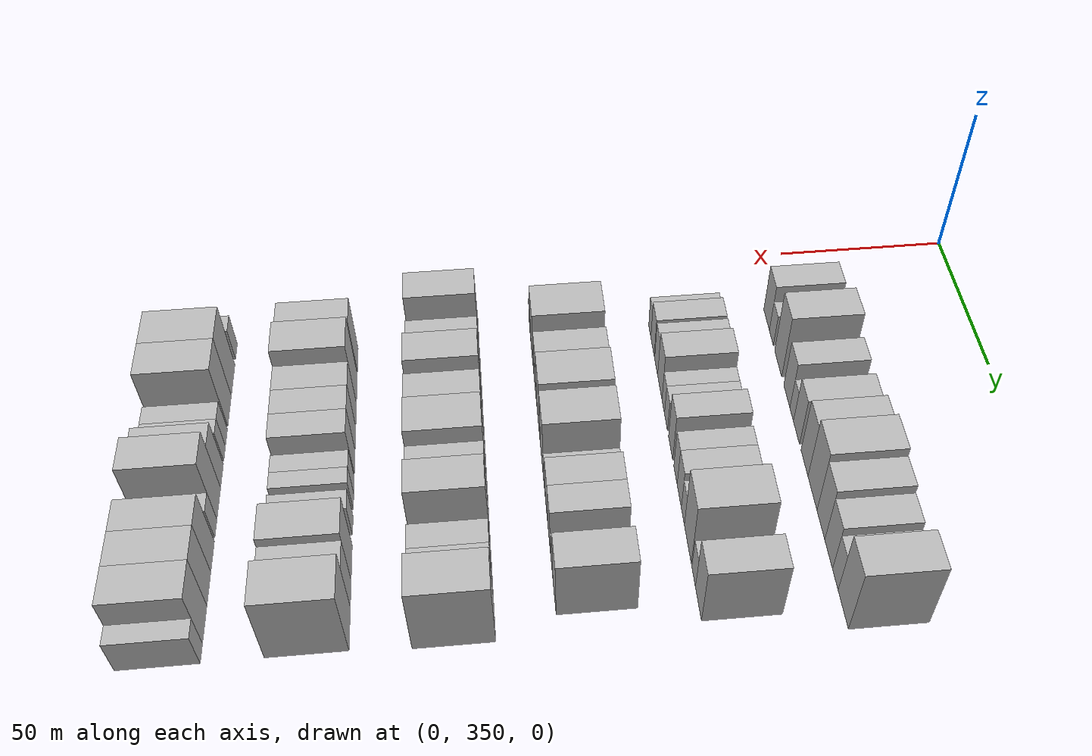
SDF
<sdf version="1.6">
 <world name="default">
  <model name="building_104">
   <static>1</static>
   <pose>50.0000 377.0486 0 0.000000 0.000000 0.000000</pose>
   <link name="link">
    <pose>0 0 9.00 0 0 0</pose>
    <collision name="collision"><geometry><box><size>20.0000 8.4923 18.0000</size></box></geometry></collision>
    <visual name="visual">
     <cast_shadows>0</cast_shadows>
     <geometry><box><size>20.0000 8.4923 18.0000</size></box></geometry>
     <material>
      <script>
       <uri>model://HANNAS_wall/materials/scripts</uri>
       <uri>model://HANNAS_wall/materials/textures</uri>
       <name>vrc/HANNAS_wall</name>
      </script>
     </material>
    </visual>
   </link>
  </model>
  <model name="building_105">
   <static>1</static>
   <pose>50.0000 384.2497 0 0.000000 0.000000 0.000000</pose>
   <link name="link">
    <pose>0 0 6.00 0 0 0</pose>
    <collision name="collision"><geometry><box><size>20.0000 5.9098 12.0000</size></box></geometry></collision>
    <visual name="visual">
     <cast_shadows>0</cast_shadows>
     <geometry><box><size>20.0000 5.9098 12.0000</size></box></geometry>
     <material>
      <script>
       <uri>model://HANNAS_wall/materials/scripts</uri>
       <uri>model://HANNAS_wall/materials/textures</uri>
       <name>vrc/HANNAS_wall</name>
      </script>
     </material>
    </visual>
   </link>
  </model>
  <model name="building_106">
   <static>1</static>
   <pose>50.0000 394.2518 0 0.000000 0.000000 0.000000</pose>
   <link name="link">
    <pose>0 0 12.00 0 0 0</pose>
    <collision name="collision"><geometry><box><size>20.0000 10.0945 24.0000</size></box></geometry></collision>
    <visual name="visual">
     <cast_shadows>0</cast_shadows>
     <geometry><box><size>20.0000 10.0945 24.0000</size></box></geometry>
     <material>
      <script>
       <uri>model://HANNAS_wall/materials/scripts</uri>
       <uri>model://HANNAS_wall/materials/textures</uri>
       <name>vrc/HANNAS_wall</name>
      </script>
     </material>
    </visual>
   </link>
  </model>
  <model name="building_107">
   <static>1</static>
   <pose>50.0000 406.4333 0 0.000000 0.000000 0.000000</pose>
   <link name="link">
    <pose>0 0 9.00 0 0 0</pose>
    <collision name="collision"><geometry><box><size>20.0000 8.2685 18.0000</size></box></geometry></collision>
    <visual name="visual">
     <cast_shadows>0</cast_shadows>
     <geometry><box><size>20.0000 8.2685 18.0000</size></box></geometry>
     <material>
      <script>
       <uri>model://HANNAS_wall/materials/scripts</uri>
       <uri>model://HANNAS_wall/materials/textures</uri>
       <name>vrc/HANNAS_wall</name>
      </script>
     </material>
    </visual>
   </link>
  </model>
  <model name="building_108">
   <static>1</static>
   <pose>50.0000 412.9755 0 0.000000 0.000000 0.000000</pose>
   <link name="link">
    <pose>0 0 6.00 0 0 0</pose>
    <collision name="collision"><geometry><box><size>20.0000 4.8158 12.0000</size></box></geometry></collision>
    <visual name="visual">
     <cast_shadows>0</cast_shadows>
     <geometry><box><size>20.0000 4.8158 12.0000</size></box></geometry>
     <material>
      <script>
       <uri>model://HANNAS_wall/materials/scripts</uri>
       <uri>model://HANNAS_wall/materials/textures</uri>
       <name>vrc/HANNAS_wall</name>
      </script>
     </material>
    </visual>
   </link>
  </model>
  <model name="building_109">
   <static>1</static>
   <pose>50.0000 419.3809 0 0.000000 0.000000 0.000000</pose>
   <link name="link">
    <pose>0 0 9.00 0 0 0</pose>
    <collision name="collision"><geometry><box><size>20.0000 7.9951 18.0000</size></box></geometry></collision>
    <visual name="visual">
     <cast_shadows>0</cast_shadows>
     <geometry><box><size>20.0000 7.9951 18.0000</size></box></geometry>
     <material>
      <script>
       <uri>model://HANNAS_wall/materials/scripts</uri>
       <uri>model://HANNAS_wall/materials/textures</uri>
       <name>vrc/HANNAS_wall</name>
      </script>
     </material>
    </visual>
   </link>
  </model>
  <model name="building_110">
   <static>1</static>
   <pose>50.0000 429.7540 0 0.000000 0.000000 0.000000</pose>
   <link name="link">
    <pose>0 0 10.50 0 0 0</pose>
    <collision name="collision"><geometry><box><size>20.0000 8.7510 21.0000</size></box></geometry></collision>
    <visual name="visual">
     <cast_shadows>0</cast_shadows>
     <geometry><box><size>20.0000 8.7510 21.0000</size></box></geometry>
     <material>
      <script>
       <uri>model://HANNAS_wall/materials/scripts</uri>
       <uri>model://HANNAS_wall/materials/textures</uri>
       <name>vrc/HANNAS_wall</name>
      </script>
     </material>
    </visual>
   </link>
  </model>
  <model name="building_111">
   <static>1</static>
   <pose>50.0000 439.6081 0 0.000000 0.000000 0.000000</pose>
   <link name="link">
    <pose>0 0 12.00 0 0 0</pose>
    <collision name="collision"><geometry><box><size>20.0000 10.9572 24.0000</size></box></geometry></collision>
    <visual name="visual">
     <cast_shadows>0</cast_shadows>
     <geometry><box><size>20.0000 10.9572 24.0000</size></box></geometry>
     <material>
      <script>
       <uri>model://HANNAS_wall/materials/scripts</uri>
       <uri>model://HANNAS_wall/materials/textures</uri>
       <name>vrc/HANNAS_wall</name>
      </script>
     </material>
    </visual>
   </link>
  </model>
  <model name="building_112">
   <static>1</static>
   <pose>50.0000 449.6203 0 0.000000 0.000000 0.000000</pose>
   <link name="link">
    <pose>0 0 10.50 0 0 0</pose>
    <collision name="collision"><geometry><box><size>20.0000 9.0672 21.0000</size></box></geometry></collision>
    <visual name="visual">
     <cast_shadows>0</cast_shadows>
     <geometry><box><size>20.0000 9.0672 21.0000</size></box></geometry>
     <material>
      <script>
       <uri>model://HANNAS_wall/materials/scripts</uri>
       <uri>model://HANNAS_wall/materials/textures</uri>
       <name>vrc/HANNAS_wall</name>
      </script>
     </material>
    </visual>
   </link>
  </model>
  <model name="building_113">
   <static>1</static>
   <pose>50.0000 458.5088 0 0.000000 0.000000 0.000000</pose>
   <link name="link">
    <pose>0 0 9.00 0 0 0</pose>
    <collision name="collision"><geometry><box><size>20.0000 8.7098 18.0000</size></box></geometry></collision>
    <visual name="visual">
     <cast_shadows>0</cast_shadows>
     <geometry><box><size>20.0000 8.7098 18.0000</size></box></geometry>
     <material>
      <script>
       <uri>model://HANNAS_wall/materials/scripts</uri>
       <uri>model://HANNAS_wall/materials/textures</uri>
       <name>vrc/HANNAS_wall</name>
      </script>
     </material>
    </visual>
   </link>
  </model>
  <model name="building_114">
   <static>1</static>
   <pose>50.0000 465.8792 0 0.000000 0.000000 0.000000</pose>
   <link name="link">
    <pose>0 0 7.50 0 0 0</pose>
    <collision name="collision"><geometry><box><size>20.0000 6.0311 15.0000</size></box></geometry></collision>
    <visual name="visual">
     <cast_shadows>0</cast_shadows>
     <geometry><box><size>20.0000 6.0311 15.0000</size></box></geometry>
     <material>
      <script>
       <uri>model://HANNAS_wall/materials/scripts</uri>
       <uri>model://HANNAS_wall/materials/textures</uri>
       <name>vrc/HANNAS_wall</name>
      </script>
     </material>
    </visual>
   </link>
  </model>
  <model name="building_115">
   <static>1</static>
   <pose>50.0000 474.3289 0 0.000000 0.000000 0.000000</pose>
   <link name="link">
    <pose>0 0 12.00 0 0 0</pose>
    <collision name="collision"><geometry><box><size>20.0000 10.8681 24.0000</size></box></geometry></collision>
    <visual name="visual">
     <cast_shadows>0</cast_shadows>
     <geometry><box><size>20.0000 10.8681 24.0000</size></box></geometry>
     <material>
      <script>
       <uri>model://HANNAS_wall/materials/scripts</uri>
       <uri>model://HANNAS_wall/materials/textures</uri>
       <name>vrc/HANNAS_wall</name>
      </script>
     </material>
    </visual>
   </link>
  </model>
  <model name="building_235">
   <static>1</static>
   <pose>85.0000 378.5329 0 0.000000 0.000000 0.000000</pose>
   <link name="link">
    <pose>0 0 6.00 0 0 0</pose>
    <collision name="collision"><geometry><box><size>20.0000 4.8106 12.0000</size></box></geometry></collision>
    <visual name="visual">
     <cast_shadows>0</cast_shadows>
     <geometry><box><size>20.0000 4.8106 12.0000</size></box></geometry>
     <material>
      <script>
       <uri>model://HANNAS_wall/materials/scripts</uri>
       <uri>model://HANNAS_wall/materials/textures</uri>
       <name>vrc/HANNAS_wall</name>
      </script>
     </material>
    </visual>
   </link>
  </model>
  <model name="building_236">
   <static>1</static>
   <pose>85.0000 384.5483 0 0.000000 0.000000 0.000000</pose>
   <link name="link">
    <pose>0 0 7.50 0 0 0</pose>
    <collision name="collision"><geometry><box><size>20.0000 7.2202 15.0000</size></box></geometry></collision>
    <visual name="visual">
     <cast_shadows>0</cast_shadows>
     <geometry><box><size>20.0000 7.2202 15.0000</size></box></geometry>
     <material>
      <script>
       <uri>model://HANNAS_wall/materials/scripts</uri>
       <uri>model://HANNAS_wall/materials/textures</uri>
       <name>vrc/HANNAS_wall</name>
      </script>
     </material>
    </visual>
   </link>
  </model>
  <model name="building_237">
   <static>1</static>
   <pose>85.0000 392.3690 0 0.000000 0.000000 0.000000</pose>
   <link name="link">
    <pose>0 0 7.50 0 0 0</pose>
    <collision name="collision"><geometry><box><size>20.0000 6.4212 15.0000</size></box></geometry></collision>
    <visual name="visual">
     <cast_shadows>0</cast_shadows>
     <geometry><box><size>20.0000 6.4212 15.0000</size></box></geometry>
     <material>
      <script>
       <uri>model://HANNAS_wall/materials/scripts</uri>
       <uri>model://HANNAS_wall/materials/textures</uri>
       <name>vrc/HANNAS_wall</name>
      </script>
     </material>
    </visual>
   </link>
  </model>
  <model name="building_238">
   <static>1</static>
   <pose>85.0000 400.0465 0 0.000000 0.000000 0.000000</pose>
   <link name="link">
    <pose>0 0 9.00 0 0 0</pose>
    <collision name="collision"><geometry><box><size>20.0000 8.9338 18.0000</size></box></geometry></collision>
    <visual name="visual">
     <cast_shadows>0</cast_shadows>
     <geometry><box><size>20.0000 8.9338 18.0000</size></box></geometry>
     <material>
      <script>
       <uri>model://HANNAS_wall/materials/scripts</uri>
       <uri>model://HANNAS_wall/materials/textures</uri>
       <name>vrc/HANNAS_wall</name>
      </script>
     </material>
    </visual>
   </link>
  </model>
  <model name="building_239">
   <static>1</static>
   <pose>85.0000 407.0414 0 0.000000 0.000000 0.000000</pose>
   <link name="link">
    <pose>0 0 6.00 0 0 0</pose>
    <collision name="collision"><geometry><box><size>20.0000 5.0562 12.0000</size></box></geometry></collision>
    <visual name="visual">
     <cast_shadows>0</cast_shadows>
     <geometry><box><size>20.0000 5.0562 12.0000</size></box></geometry>
     <material>
      <script>
       <uri>model://HANNAS_wall/materials/scripts</uri>
       <uri>model://HANNAS_wall/materials/textures</uri>
       <name>vrc/HANNAS_wall</name>
      </script>
     </material>
    </visual>
   </link>
  </model>
  <model name="building_240">
   <static>1</static>
   <pose>85.0000 412.5258 0 0.000000 0.000000 0.000000</pose>
   <link name="link">
    <pose>0 0 6.00 0 0 0</pose>
    <collision name="collision"><geometry><box><size>20.0000 5.9125 12.0000</size></box></geometry></collision>
    <visual name="visual">
     <cast_shadows>0</cast_shadows>
     <geometry><box><size>20.0000 5.9125 12.0000</size></box></geometry>
     <material>
      <script>
       <uri>model://HANNAS_wall/materials/scripts</uri>
       <uri>model://HANNAS_wall/materials/textures</uri>
       <name>vrc/HANNAS_wall</name>
      </script>
     </material>
    </visual>
   </link>
  </model>
  <model name="building_241">
   <static>1</static>
   <pose>85.0000 421.4862 0 0.000000 0.000000 0.000000</pose>
   <link name="link">
    <pose>0 0 9.00 0 0 0</pose>
    <collision name="collision"><geometry><box><size>20.0000 8.0084 18.0000</size></box></geometry></collision>
    <visual name="visual">
     <cast_shadows>0</cast_shadows>
     <geometry><box><size>20.0000 8.0084 18.0000</size></box></geometry>
     <material>
      <script>
       <uri>model://HANNAS_wall/materials/scripts</uri>
       <uri>model://HANNAS_wall/materials/textures</uri>
       <name>vrc/HANNAS_wall</name>
      </script>
     </material>
    </visual>
   </link>
  </model>
  <model name="building_242">
   <static>1</static>
   <pose>85.0000 430.5448 0 0.000000 0.000000 0.000000</pose>
   <link name="link">
    <pose>0 0 7.50 0 0 0</pose>
    <collision name="collision"><geometry><box><size>20.0000 6.1088 15.0000</size></box></geometry></collision>
    <visual name="visual">
     <cast_shadows>0</cast_shadows>
     <geometry><box><size>20.0000 6.1088 15.0000</size></box></geometry>
     <material>
      <script>
       <uri>model://HANNAS_wall/materials/scripts</uri>
       <uri>model://HANNAS_wall/materials/textures</uri>
       <name>vrc/HANNAS_wall</name>
      </script>
     </material>
    </visual>
   </link>
  </model>
  <model name="building_243">
   <static>1</static>
   <pose>85.0000 437.2988 0 0.000000 0.000000 0.000000</pose>
   <link name="link">
    <pose>0 0 7.50 0 0 0</pose>
    <collision name="collision"><geometry><box><size>20.0000 7.3991 15.0000</size></box></geometry></collision>
    <visual name="visual">
     <cast_shadows>0</cast_shadows>
     <geometry><box><size>20.0000 7.3991 15.0000</size></box></geometry>
     <material>
      <script>
       <uri>model://HANNAS_wall/materials/scripts</uri>
       <uri>model://HANNAS_wall/materials/textures</uri>
       <name>vrc/HANNAS_wall</name>
      </script>
     </material>
    </visual>
   </link>
  </model>
  <model name="building_244">
   <static>1</static>
   <pose>85.0000 443.6974 0 0.000000 0.000000 0.000000</pose>
   <link name="link">
    <pose>0 0 6.00 0 0 0</pose>
    <collision name="collision"><geometry><box><size>20.0000 5.3982 12.0000</size></box></geometry></collision>
    <visual name="visual">
     <cast_shadows>0</cast_shadows>
     <geometry><box><size>20.0000 5.3982 12.0000</size></box></geometry>
     <material>
      <script>
       <uri>model://HANNAS_wall/materials/scripts</uri>
       <uri>model://HANNAS_wall/materials/textures</uri>
       <name>vrc/HANNAS_wall</name>
      </script>
     </material>
    </visual>
   </link>
  </model>
  <model name="building_245">
   <static>1</static>
   <pose>85.0000 452.1818 0 0.000000 0.000000 0.000000</pose>
   <link name="link">
    <pose>0 0 12.00 0 0 0</pose>
    <collision name="collision"><geometry><box><size>20.0000 11.5706 24.0000</size></box></geometry></collision>
    <visual name="visual">
     <cast_shadows>0</cast_shadows>
     <geometry><box><size>20.0000 11.5706 24.0000</size></box></geometry>
     <material>
      <script>
       <uri>model://HANNAS_wall/materials/scripts</uri>
       <uri>model://HANNAS_wall/materials/textures</uri>
       <name>vrc/HANNAS_wall</name>
      </script>
     </material>
    </visual>
   </link>
  </model>
  <model name="building_246">
   <static>1</static>
   <pose>85.0000 461.8833 0 0.000000 0.000000 0.000000</pose>
   <link name="link">
    <pose>0 0 6.00 0 0 0</pose>
    <collision name="collision"><geometry><box><size>20.0000 5.8324 12.0000</size></box></geometry></collision>
    <visual name="visual">
     <cast_shadows>0</cast_shadows>
     <geometry><box><size>20.0000 5.8324 12.0000</size></box></geometry>
     <material>
      <script>
       <uri>model://HANNAS_wall/materials/scripts</uri>
       <uri>model://HANNAS_wall/materials/textures</uri>
       <name>vrc/HANNAS_wall</name>
      </script>
     </material>
    </visual>
   </link>
  </model>
  <model name="building_247">
   <static>1</static>
   <pose>85.0000 469.5184 0 0.000000 0.000000 0.000000</pose>
   <link name="link">
    <pose>0 0 10.50 0 0 0</pose>
    <collision name="collision"><geometry><box><size>20.0000 9.4377 21.0000</size></box></geometry></collision>
    <visual name="visual">
     <cast_shadows>0</cast_shadows>
     <geometry><box><size>20.0000 9.4377 21.0000</size></box></geometry>
     <material>
      <script>
       <uri>model://HANNAS_wall/materials/scripts</uri>
       <uri>model://HANNAS_wall/materials/textures</uri>
       <name>vrc/HANNAS_wall</name>
      </script>
     </material>
    </visual>
   </link>
  </model>
  <model name="building_359">
   <static>1</static>
   <pose>120.0000 376.2782 0 0.000000 0.000000 0.000000</pose>
   <link name="link">
    <pose>0 0 6.00 0 0 0</pose>
    <collision name="collision"><geometry><box><size>20.0000 5.6240 12.0000</size></box></geometry></collision>
    <visual name="visual">
     <cast_shadows>0</cast_shadows>
     <geometry><box><size>20.0000 5.6240 12.0000</size></box></geometry>
     <material>
      <script>
       <uri>model://HANNAS_wall/materials/scripts</uri>
       <uri>model://HANNAS_wall/materials/textures</uri>
       <name>vrc/HANNAS_wall</name>
      </script>
     </material>
    </visual>
   </link>
  </model>
  <model name="building_360">
   <static>1</static>
   <pose>120.0000 385.8438 0 0.000000 0.000000 0.000000</pose>
   <link name="link">
    <pose>0 0 12.00 0 0 0</pose>
    <collision name="collision"><geometry><box><size>20.0000 11.5074 24.0000</size></box></geometry></collision>
    <visual name="visual">
     <cast_shadows>0</cast_shadows>
     <geometry><box><size>20.0000 11.5074 24.0000</size></box></geometry>
     <material>
      <script>
       <uri>model://HANNAS_wall/materials/scripts</uri>
       <uri>model://HANNAS_wall/materials/textures</uri>
       <name>vrc/HANNAS_wall</name>
      </script>
     </material>
    </visual>
   </link>
  </model>
  <model name="building_361">
   <static>1</static>
   <pose>120.0000 399.1513 0 0.000000 0.000000 0.000000</pose>
   <link name="link">
    <pose>0 0 10.50 0 0 0</pose>
    <collision name="collision"><geometry><box><size>20.0000 9.1075 21.0000</size></box></geometry></collision>
    <visual name="visual">
     <cast_shadows>0</cast_shadows>
     <geometry><box><size>20.0000 9.1075 21.0000</size></box></geometry>
     <material>
      <script>
       <uri>model://HANNAS_wall/materials/scripts</uri>
       <uri>model://HANNAS_wall/materials/textures</uri>
       <name>vrc/HANNAS_wall</name>
      </script>
     </material>
    </visual>
   </link>
  </model>
  <model name="building_362">
   <static>1</static>
   <pose>120.0000 410.3198 0 0.000000 0.000000 0.000000</pose>
   <link name="link">
    <pose>0 0 12.00 0 0 0</pose>
    <collision name="collision"><geometry><box><size>20.0000 11.2294 24.0000</size></box></geometry></collision>
    <visual name="visual">
     <cast_shadows>0</cast_shadows>
     <geometry><box><size>20.0000 11.2294 24.0000</size></box></geometry>
     <material>
      <script>
       <uri>model://HANNAS_wall/materials/scripts</uri>
       <uri>model://HANNAS_wall/materials/textures</uri>
       <name>vrc/HANNAS_wall</name>
      </script>
     </material>
    </visual>
   </link>
  </model>
  <model name="building_363">
   <static>1</static>
   <pose>120.0000 423.5250 0 0.000000 0.000000 0.000000</pose>
   <link name="link">
    <pose>0 0 12.00 0 0 0</pose>
    <collision name="collision"><geometry><box><size>20.0000 11.1811 24.0000</size></box></geometry></collision>
    <visual name="visual">
     <cast_shadows>0</cast_shadows>
     <geometry><box><size>20.0000 11.1811 24.0000</size></box></geometry>
     <material>
      <script>
       <uri>model://HANNAS_wall/materials/scripts</uri>
       <uri>model://HANNAS_wall/materials/textures</uri>
       <name>vrc/HANNAS_wall</name>
      </script>
     </material>
    </visual>
   </link>
  </model>
  <model name="building_364">
   <static>1</static>
   <pose>120.0000 432.0103 0 0.000000 0.000000 0.000000</pose>
   <link name="link">
    <pose>0 0 6.00 0 0 0</pose>
    <collision name="collision"><geometry><box><size>20.0000 5.7895 12.0000</size></box></geometry></collision>
    <visual name="visual">
     <cast_shadows>0</cast_shadows>
     <geometry><box><size>20.0000 5.7895 12.0000</size></box></geometry>
     <material>
      <script>
       <uri>model://HANNAS_wall/materials/scripts</uri>
       <uri>model://HANNAS_wall/materials/textures</uri>
       <name>vrc/HANNAS_wall</name>
      </script>
     </material>
    </visual>
   </link>
  </model>
  <model name="building_365">
   <static>1</static>
   <pose>120.0000 439.1686 0 0.000000 0.000000 0.000000</pose>
   <link name="link">
    <pose>0 0 9.00 0 0 0</pose>
    <collision name="collision"><geometry><box><size>20.0000 8.5270 18.0000</size></box></geometry></collision>
    <visual name="visual">
     <cast_shadows>0</cast_shadows>
     <geometry><box><size>20.0000 8.5270 18.0000</size></box></geometry>
     <material>
      <script>
       <uri>model://HANNAS_wall/materials/scripts</uri>
       <uri>model://HANNAS_wall/materials/textures</uri>
       <name>vrc/HANNAS_wall</name>
      </script>
     </material>
    </visual>
   </link>
  </model>
  <model name="building_366">
   <static>1</static>
   <pose>120.0000 447.5796 0 0.000000 0.000000 0.000000</pose>
   <link name="link">
    <pose>0 0 9.00 0 0 0</pose>
    <collision name="collision"><geometry><box><size>20.0000 8.2950 18.0000</size></box></geometry></collision>
    <visual name="visual">
     <cast_shadows>0</cast_shadows>
     <geometry><box><size>20.0000 8.2950 18.0000</size></box></geometry>
     <material>
      <script>
       <uri>model://HANNAS_wall/materials/scripts</uri>
       <uri>model://HANNAS_wall/materials/textures</uri>
       <name>vrc/HANNAS_wall</name>
      </script>
     </material>
    </visual>
   </link>
  </model>
  <model name="building_367">
   <static>1</static>
   <pose>120.0000 456.5414 0 0.000000 0.000000 0.000000</pose>
   <link name="link">
    <pose>0 0 6.00 0 0 0</pose>
    <collision name="collision"><geometry><box><size>20.0000 5.6285 12.0000</size></box></geometry></collision>
    <visual name="visual">
     <cast_shadows>0</cast_shadows>
     <geometry><box><size>20.0000 5.6285 12.0000</size></box></geometry>
     <material>
      <script>
       <uri>model://HANNAS_wall/materials/scripts</uri>
       <uri>model://HANNAS_wall/materials/textures</uri>
       <name>vrc/HANNAS_wall</name>
      </script>
     </material>
    </visual>
   </link>
  </model>
  <model name="building_368">
   <static>1</static>
   <pose>120.0000 464.3218 0 0.000000 0.000000 0.000000</pose>
   <link name="link">
    <pose>0 0 10.50 0 0 0</pose>
    <collision name="collision"><geometry><box><size>20.0000 9.9324 21.0000</size></box></geometry></collision>
    <visual name="visual">
     <cast_shadows>0</cast_shadows>
     <geometry><box><size>20.0000 9.9324 21.0000</size></box></geometry>
     <material>
      <script>
       <uri>model://HANNAS_wall/materials/scripts</uri>
       <uri>model://HANNAS_wall/materials/textures</uri>
       <name>vrc/HANNAS_wall</name>
      </script>
     </material>
    </visual>
   </link>
  </model>
  <model name="building_484">
   <static>1</static>
   <pose>155.0000 373.6735 0 0.000000 0.000000 0.000000</pose>
   <link name="link">
    <pose>0 0 10.50 0 0 0</pose>
    <collision name="collision"><geometry><box><size>20.0000 9.9449 21.0000</size></box></geometry></collision>
    <visual name="visual">
     <cast_shadows>0</cast_shadows>
     <geometry><box><size>20.0000 9.9449 21.0000</size></box></geometry>
     <material>
      <script>
       <uri>model://HANNAS_wall/materials/scripts</uri>
       <uri>model://HANNAS_wall/materials/textures</uri>
       <name>vrc/HANNAS_wall</name>
      </script>
     </material>
    </visual>
   </link>
  </model>
  <model name="building_485">
   <static>1</static>
   <pose>155.0000 385.2960 0 0.000000 0.000000 0.000000</pose>
   <link name="link">
    <pose>0 0 7.50 0 0 0</pose>
    <collision name="collision"><geometry><box><size>20.0000 7.3001 15.0000</size></box></geometry></collision>
    <visual name="visual">
     <cast_shadows>0</cast_shadows>
     <geometry><box><size>20.0000 7.3001 15.0000</size></box></geometry>
     <material>
      <script>
       <uri>model://HANNAS_wall/materials/scripts</uri>
       <uri>model://HANNAS_wall/materials/textures</uri>
       <name>vrc/HANNAS_wall</name>
      </script>
     </material>
    </visual>
   </link>
  </model>
  <model name="building_486">
   <static>1</static>
   <pose>155.0000 391.7962 0 0.000000 0.000000 0.000000</pose>
   <link name="link">
    <pose>0 0 6.00 0 0 0</pose>
    <collision name="collision"><geometry><box><size>20.0000 5.7002 12.0000</size></box></geometry></collision>
    <visual name="visual">
     <cast_shadows>0</cast_shadows>
     <geometry><box><size>20.0000 5.7002 12.0000</size></box></geometry>
     <material>
      <script>
       <uri>model://HANNAS_wall/materials/scripts</uri>
       <uri>model://HANNAS_wall/materials/textures</uri>
       <name>vrc/HANNAS_wall</name>
      </script>
     </material>
    </visual>
   </link>
  </model>
  <model name="building_487">
   <static>1</static>
   <pose>155.0000 399.5409 0 0.000000 0.000000 0.000000</pose>
   <link name="link">
    <pose>0 0 12.00 0 0 0</pose>
    <collision name="collision"><geometry><box><size>20.0000 9.7892 24.0000</size></box></geometry></collision>
    <visual name="visual">
     <cast_shadows>0</cast_shadows>
     <geometry><box><size>20.0000 9.7892 24.0000</size></box></geometry>
     <material>
      <script>
       <uri>model://HANNAS_wall/materials/scripts</uri>
       <uri>model://HANNAS_wall/materials/textures</uri>
       <name>vrc/HANNAS_wall</name>
      </script>
     </material>
    </visual>
   </link>
  </model>
  <model name="building_488">
   <static>1</static>
   <pose>155.0000 411.1669 0 0.000000 0.000000 0.000000</pose>
   <link name="link">
    <pose>0 0 10.50 0 0 0</pose>
    <collision name="collision"><geometry><box><size>20.0000 9.4628 21.0000</size></box></geometry></collision>
    <visual name="visual">
     <cast_shadows>0</cast_shadows>
     <geometry><box><size>20.0000 9.4628 21.0000</size></box></geometry>
     <material>
      <script>
       <uri>model://HANNAS_wall/materials/scripts</uri>
       <uri>model://HANNAS_wall/materials/textures</uri>
       <name>vrc/HANNAS_wall</name>
      </script>
     </material>
    </visual>
   </link>
  </model>
  <model name="building_489">
   <static>1</static>
   <pose>155.0000 422.4805 0 0.000000 0.000000 0.000000</pose>
   <link name="link">
    <pose>0 0 12.00 0 0 0</pose>
    <collision name="collision"><geometry><box><size>20.0000 11.1645 24.0000</size></box></geometry></collision>
    <visual name="visual">
     <cast_shadows>0</cast_shadows>
     <geometry><box><size>20.0000 11.1645 24.0000</size></box></geometry>
     <material>
      <script>
       <uri>model://HANNAS_wall/materials/scripts</uri>
       <uri>model://HANNAS_wall/materials/textures</uri>
       <name>vrc/HANNAS_wall</name>
      </script>
     </material>
    </visual>
   </link>
  </model>
  <model name="building_490">
   <static>1</static>
   <pose>155.0000 432.4189 0 0.000000 0.000000 0.000000</pose>
   <link name="link">
    <pose>0 0 9.00 0 0 0</pose>
    <collision name="collision"><geometry><box><size>20.0000 8.7122 18.0000</size></box></geometry></collision>
    <visual name="visual">
     <cast_shadows>0</cast_shadows>
     <geometry><box><size>20.0000 8.7122 18.0000</size></box></geometry>
     <material>
      <script>
       <uri>model://HANNAS_wall/materials/scripts</uri>
       <uri>model://HANNAS_wall/materials/textures</uri>
       <name>vrc/HANNAS_wall</name>
      </script>
     </material>
    </visual>
   </link>
  </model>
  <model name="building_491">
   <static>1</static>
   <pose>155.0000 441.7450 0 0.000000 0.000000 0.000000</pose>
   <link name="link">
    <pose>0 0 12.00 0 0 0</pose>
    <collision name="collision"><geometry><box><size>20.0000 9.9401 24.0000</size></box></geometry></collision>
    <visual name="visual">
     <cast_shadows>0</cast_shadows>
     <geometry><box><size>20.0000 9.9401 24.0000</size></box></geometry>
     <material>
      <script>
       <uri>model://HANNAS_wall/materials/scripts</uri>
       <uri>model://HANNAS_wall/materials/textures</uri>
       <name>vrc/HANNAS_wall</name>
      </script>
     </material>
    </visual>
   </link>
  </model>
  <model name="building_492">
   <static>1</static>
   <pose>155.0000 453.1913 0 0.000000 0.000000 0.000000</pose>
   <link name="link">
    <pose>0 0 7.50 0 0 0</pose>
    <collision name="collision"><geometry><box><size>20.0000 6.9524 15.0000</size></box></geometry></collision>
    <visual name="visual">
     <cast_shadows>0</cast_shadows>
     <geometry><box><size>20.0000 6.9524 15.0000</size></box></geometry>
     <material>
      <script>
       <uri>model://HANNAS_wall/materials/scripts</uri>
       <uri>model://HANNAS_wall/materials/textures</uri>
       <name>vrc/HANNAS_wall</name>
      </script>
     </material>
    </visual>
   </link>
  </model>
  <model name="building_493">
   <static>1</static>
   <pose>155.0000 460.2563 0 0.000000 0.000000 0.000000</pose>
   <link name="link">
    <pose>0 0 7.50 0 0 0</pose>
    <collision name="collision"><geometry><box><size>20.0000 7.1775 15.0000</size></box></geometry></collision>
    <visual name="visual">
     <cast_shadows>0</cast_shadows>
     <geometry><box><size>20.0000 7.1775 15.0000</size></box></geometry>
     <material>
      <script>
       <uri>model://HANNAS_wall/materials/scripts</uri>
       <uri>model://HANNAS_wall/materials/textures</uri>
       <name>vrc/HANNAS_wall</name>
      </script>
     </material>
    </visual>
   </link>
  </model>
  <model name="building_494">
   <static>1</static>
   <pose>155.0000 469.5306 0 0.000000 0.000000 0.000000</pose>
   <link name="link">
    <pose>0 0 12.00 0 0 0</pose>
    <collision name="collision"><geometry><box><size>20.0000 11.3711 24.0000</size></box></geometry></collision>
    <visual name="visual">
     <cast_shadows>0</cast_shadows>
     <geometry><box><size>20.0000 11.3711 24.0000</size></box></geometry>
     <material>
      <script>
       <uri>model://HANNAS_wall/materials/scripts</uri>
       <uri>model://HANNAS_wall/materials/textures</uri>
       <name>vrc/HANNAS_wall</name>
      </script>
     </material>
    </visual>
   </link>
  </model>
  <model name="building_614">
   <static>1</static>
   <pose>190.0000 381.7549 0 0.000000 0.000000 0.000000</pose>
   <link name="link">
    <pose>0 0 10.50 0 0 0</pose>
    <collision name="collision"><geometry><box><size>20.0000 8.9900 21.0000</size></box></geometry></collision>
    <visual name="visual">
     <cast_shadows>0</cast_shadows>
     <geometry><box><size>20.0000 8.9900 21.0000</size></box></geometry>
     <material>
      <script>
       <uri>model://HANNAS_wall/materials/scripts</uri>
       <uri>model://HANNAS_wall/materials/textures</uri>
       <name>vrc/HANNAS_wall</name>
      </script>
     </material>
    </visual>
   </link>
  </model>
  <model name="building_615">
   <static>1</static>
   <pose>190.0000 392.6049 0 0.000000 0.000000 0.000000</pose>
   <link name="link">
    <pose>0 0 12.00 0 0 0</pose>
    <collision name="collision"><geometry><box><size>20.0000 10.7100 24.0000</size></box></geometry></collision>
    <visual name="visual">
     <cast_shadows>0</cast_shadows>
     <geometry><box><size>20.0000 10.7100 24.0000</size></box></geometry>
     <material>
      <script>
       <uri>model://HANNAS_wall/materials/scripts</uri>
       <uri>model://HANNAS_wall/materials/textures</uri>
       <name>vrc/HANNAS_wall</name>
      </script>
     </material>
    </visual>
   </link>
  </model>
  <model name="building_616">
   <static>1</static>
   <pose>190.0000 402.0992 0 0.000000 0.000000 0.000000</pose>
   <link name="link">
    <pose>0 0 9.00 0 0 0</pose>
    <collision name="collision"><geometry><box><size>20.0000 8.2786 18.0000</size></box></geometry></collision>
    <visual name="visual">
     <cast_shadows>0</cast_shadows>
     <geometry><box><size>20.0000 8.2786 18.0000</size></box></geometry>
     <material>
      <script>
       <uri>model://HANNAS_wall/materials/scripts</uri>
       <uri>model://HANNAS_wall/materials/textures</uri>
       <name>vrc/HANNAS_wall</name>
      </script>
     </material>
    </visual>
   </link>
  </model>
  <model name="building_617">
   <static>1</static>
   <pose>190.0000 410.2633 0 0.000000 0.000000 0.000000</pose>
   <link name="link">
    <pose>0 0 9.00 0 0 0</pose>
    <collision name="collision"><geometry><box><size>20.0000 8.0495 18.0000</size></box></geometry></collision>
    <visual name="visual">
     <cast_shadows>0</cast_shadows>
     <geometry><box><size>20.0000 8.0495 18.0000</size></box></geometry>
     <material>
      <script>
       <uri>model://HANNAS_wall/materials/scripts</uri>
       <uri>model://HANNAS_wall/materials/textures</uri>
       <name>vrc/HANNAS_wall</name>
      </script>
     </material>
    </visual>
   </link>
  </model>
  <model name="building_618">
   <static>1</static>
   <pose>190.0000 418.2264 0 0.000000 0.000000 0.000000</pose>
   <link name="link">
    <pose>0 0 9.00 0 0 0</pose>
    <collision name="collision"><geometry><box><size>20.0000 7.8767 18.0000</size></box></geometry></collision>
    <visual name="visual">
     <cast_shadows>0</cast_shadows>
     <geometry><box><size>20.0000 7.8767 18.0000</size></box></geometry>
     <material>
      <script>
       <uri>model://HANNAS_wall/materials/scripts</uri>
       <uri>model://HANNAS_wall/materials/textures</uri>
       <name>vrc/HANNAS_wall</name>
      </script>
     </material>
    </visual>
   </link>
  </model>
  <model name="building_619">
   <static>1</static>
   <pose>190.0000 425.8889 0 0.000000 0.000000 0.000000</pose>
   <link name="link">
    <pose>0 0 6.00 0 0 0</pose>
    <collision name="collision"><geometry><box><size>20.0000 5.4482 12.0000</size></box></geometry></collision>
    <visual name="visual">
     <cast_shadows>0</cast_shadows>
     <geometry><box><size>20.0000 5.4482 12.0000</size></box></geometry>
     <material>
      <script>
       <uri>model://HANNAS_wall/materials/scripts</uri>
       <uri>model://HANNAS_wall/materials/textures</uri>
       <name>vrc/HANNAS_wall</name>
      </script>
     </material>
    </visual>
   </link>
  </model>
  <model name="building_620">
   <static>1</static>
   <pose>190.0000 431.1399 0 0.000000 0.000000 0.000000</pose>
   <link name="link">
    <pose>0 0 6.00 0 0 0</pose>
    <collision name="collision"><geometry><box><size>20.0000 5.0539 12.0000</size></box></geometry></collision>
    <visual name="visual">
     <cast_shadows>0</cast_shadows>
     <geometry><box><size>20.0000 5.0539 12.0000</size></box></geometry>
     <material>
      <script>
       <uri>model://HANNAS_wall/materials/scripts</uri>
       <uri>model://HANNAS_wall/materials/textures</uri>
       <name>vrc/HANNAS_wall</name>
      </script>
     </material>
    </visual>
   </link>
  </model>
  <model name="building_621">
   <static>1</static>
   <pose>190.0000 438.6092 0 0.000000 0.000000 0.000000</pose>
   <link name="link">
    <pose>0 0 6.00 0 0 0</pose>
    <collision name="collision"><geometry><box><size>20.0000 5.8846 12.0000</size></box></geometry></collision>
    <visual name="visual">
     <cast_shadows>0</cast_shadows>
     <geometry><box><size>20.0000 5.8846 12.0000</size></box></geometry>
     <material>
      <script>
       <uri>model://HANNAS_wall/materials/scripts</uri>
       <uri>model://HANNAS_wall/materials/textures</uri>
       <name>vrc/HANNAS_wall</name>
      </script>
     </material>
    </visual>
   </link>
  </model>
  <model name="building_622">
   <static>1</static>
   <pose>190.0000 449.7172 0 0.000000 0.000000 0.000000</pose>
   <link name="link">
    <pose>0 0 10.50 0 0 0</pose>
    <collision name="collision"><geometry><box><size>20.0000 10.3314 21.0000</size></box></geometry></collision>
    <visual name="visual">
     <cast_shadows>0</cast_shadows>
     <geometry><box><size>20.0000 10.3314 21.0000</size></box></geometry>
     <material>
      <script>
       <uri>model://HANNAS_wall/materials/scripts</uri>
       <uri>model://HANNAS_wall/materials/textures</uri>
       <name>vrc/HANNAS_wall</name>
      </script>
     </material>
    </visual>
   </link>
  </model>
  <model name="building_623">
   <static>1</static>
   <pose>190.0000 458.6986 0 0.000000 0.000000 0.000000</pose>
   <link name="link">
    <pose>0 0 9.00 0 0 0</pose>
    <collision name="collision"><geometry><box><size>20.0000 7.6315 18.0000</size></box></geometry></collision>
    <visual name="visual">
     <cast_shadows>0</cast_shadows>
     <geometry><box><size>20.0000 7.6315 18.0000</size></box></geometry>
     <material>
      <script>
       <uri>model://HANNAS_wall/materials/scripts</uri>
       <uri>model://HANNAS_wall/materials/textures</uri>
       <name>vrc/HANNAS_wall</name>
      </script>
     </material>
    </visual>
   </link>
  </model>
  <model name="building_624">
   <static>1</static>
   <pose>190.0000 468.4229 0 0.000000 0.000000 0.000000</pose>
   <link name="link">
    <pose>0 0 12.00 0 0 0</pose>
    <collision name="collision"><geometry><box><size>20.0000 11.8170 24.0000</size></box></geometry></collision>
    <visual name="visual">
     <cast_shadows>0</cast_shadows>
     <geometry><box><size>20.0000 11.8170 24.0000</size></box></geometry>
     <material>
      <script>
       <uri>model://HANNAS_wall/materials/scripts</uri>
       <uri>model://HANNAS_wall/materials/textures</uri>
       <name>vrc/HANNAS_wall</name>
      </script>
     </material>
    </visual>
   </link>
  </model>
  <model name="building_728">
   <static>1</static>
   <pose>225.0000 375.1546 0 0.000000 0.000000 0.000000</pose>
   <link name="link">
    <pose>0 0 6.00 0 0 0</pose>
    <collision name="collision"><geometry><box><size>20.0000 5.9894 12.0000</size></box></geometry></collision>
    <visual name="visual">
     <cast_shadows>0</cast_shadows>
     <geometry><box><size>20.0000 5.9894 12.0000</size></box></geometry>
     <material>
      <script>
       <uri>model://HANNAS_wall/materials/scripts</uri>
       <uri>model://HANNAS_wall/materials/textures</uri>
       <name>vrc/HANNAS_wall</name>
      </script>
     </material>
    </visual>
   </link>
  </model>
  <model name="building_729">
   <static>1</static>
   <pose>225.0000 385.9678 0 0.000000 0.000000 0.000000</pose>
   <link name="link">
    <pose>0 0 12.00 0 0 0</pose>
    <collision name="collision"><geometry><box><size>20.0000 11.6371 24.0000</size></box></geometry></collision>
    <visual name="visual">
     <cast_shadows>0</cast_shadows>
     <geometry><box><size>20.0000 11.6371 24.0000</size></box></geometry>
     <material>
      <script>
       <uri>model://HANNAS_wall/materials/scripts</uri>
       <uri>model://HANNAS_wall/materials/textures</uri>
       <name>vrc/HANNAS_wall</name>
      </script>
     </material>
    </visual>
   </link>
  </model>
  <model name="building_730">
   <static>1</static>
   <pose>225.0000 397.2819 0 0.000000 0.000000 0.000000</pose>
   <link name="link">
    <pose>0 0 12.00 0 0 0</pose>
    <collision name="collision"><geometry><box><size>20.0000 10.9910 24.0000</size></box></geometry></collision>
    <visual name="visual">
     <cast_shadows>0</cast_shadows>
     <geometry><box><size>20.0000 10.9910 24.0000</size></box></geometry>
     <material>
      <script>
       <uri>model://HANNAS_wall/materials/scripts</uri>
       <uri>model://HANNAS_wall/materials/textures</uri>
       <name>vrc/HANNAS_wall</name>
      </script>
     </material>
    </visual>
   </link>
  </model>
  <model name="building_731">
   <static>1</static>
   <pose>225.0000 406.7216 0 0.000000 0.000000 0.000000</pose>
   <link name="link">
    <pose>0 0 6.00 0 0 0</pose>
    <collision name="collision"><geometry><box><size>20.0000 5.8885 12.0000</size></box></geometry></collision>
    <visual name="visual">
     <cast_shadows>0</cast_shadows>
     <geometry><box><size>20.0000 5.8885 12.0000</size></box></geometry>
     <material>
      <script>
       <uri>model://HANNAS_wall/materials/scripts</uri>
       <uri>model://HANNAS_wall/materials/textures</uri>
       <name>vrc/HANNAS_wall</name>
      </script>
     </material>
    </visual>
   </link>
  </model>
  <model name="building_732">
   <static>1</static>
   <pose>225.0000 412.1816 0 0.000000 0.000000 0.000000</pose>
   <link name="link">
    <pose>0 0 6.00 0 0 0</pose>
    <collision name="collision"><geometry><box><size>20.0000 5.0314 12.0000</size></box></geometry></collision>
    <visual name="visual">
     <cast_shadows>0</cast_shadows>
     <geometry><box><size>20.0000 5.0314 12.0000</size></box></geometry>
     <material>
      <script>
       <uri>model://HANNAS_wall/materials/scripts</uri>
       <uri>model://HANNAS_wall/materials/textures</uri>
       <name>vrc/HANNAS_wall</name>
      </script>
     </material>
    </visual>
   </link>
  </model>
  <model name="building_733">
   <static>1</static>
   <pose>225.0000 419.5662 0 0.000000 0.000000 0.000000</pose>
   <link name="link">
    <pose>0 0 9.00 0 0 0</pose>
    <collision name="collision"><geometry><box><size>20.0000 7.7378 18.0000</size></box></geometry></collision>
    <visual name="visual">
     <cast_shadows>0</cast_shadows>
     <geometry><box><size>20.0000 7.7378 18.0000</size></box></geometry>
     <material>
      <script>
       <uri>model://HANNAS_wall/materials/scripts</uri>
       <uri>model://HANNAS_wall/materials/textures</uri>
       <name>vrc/HANNAS_wall</name>
      </script>
     </material>
    </visual>
   </link>
  </model>
  <model name="building_734">
   <static>1</static>
   <pose>225.0000 428.4557 0 0.000000 0.000000 0.000000</pose>
   <link name="link">
    <pose>0 0 12.00 0 0 0</pose>
    <collision name="collision"><geometry><box><size>20.0000 10.0413 24.0000</size></box></geometry></collision>
    <visual name="visual">
     <cast_shadows>0</cast_shadows>
     <geometry><box><size>20.0000 10.0413 24.0000</size></box></geometry>
     <material>
      <script>
       <uri>model://HANNAS_wall/materials/scripts</uri>
       <uri>model://HANNAS_wall/materials/textures</uri>
       <name>vrc/HANNAS_wall</name>
      </script>
     </material>
    </visual>
   </link>
  </model>
  <model name="building_735">
   <static>1</static>
   <pose>225.0000 436.3069 0 0.000000 0.000000 0.000000</pose>
   <link name="link">
    <pose>0 0 6.00 0 0 0</pose>
    <collision name="collision"><geometry><box><size>20.0000 5.6612 12.0000</size></box></geometry></collision>
    <visual name="visual">
     <cast_shadows>0</cast_shadows>
     <geometry><box><size>20.0000 5.6612 12.0000</size></box></geometry>
     <material>
      <script>
       <uri>model://HANNAS_wall/materials/scripts</uri>
       <uri>model://HANNAS_wall/materials/textures</uri>
       <name>vrc/HANNAS_wall</name>
      </script>
     </material>
    </visual>
   </link>
  </model>
  <model name="building_736">
   <static>1</static>
   <pose>225.0000 444.6814 0 0.000000 0.000000 0.000000</pose>
   <link name="link">
    <pose>0 0 10.50 0 0 0</pose>
    <collision name="collision"><geometry><box><size>20.0000 9.0877 21.0000</size></box></geometry></collision>
    <visual name="visual">
     <cast_shadows>0</cast_shadows>
     <geometry><box><size>20.0000 9.0877 21.0000</size></box></geometry>
     <material>
      <script>
       <uri>model://HANNAS_wall/materials/scripts</uri>
       <uri>model://HANNAS_wall/materials/textures</uri>
       <name>vrc/HANNAS_wall</name>
      </script>
     </material>
    </visual>
   </link>
  </model>
  <model name="building_737">
   <static>1</static>
   <pose>225.0000 454.0327 0 0.000000 0.000000 0.000000</pose>
   <link name="link">
    <pose>0 0 10.50 0 0 0</pose>
    <collision name="collision"><geometry><box><size>20.0000 9.6149 21.0000</size></box></geometry></collision>
    <visual name="visual">
     <cast_shadows>0</cast_shadows>
     <geometry><box><size>20.0000 9.6149 21.0000</size></box></geometry>
     <material>
      <script>
       <uri>model://HANNAS_wall/materials/scripts</uri>
       <uri>model://HANNAS_wall/materials/textures</uri>
       <name>vrc/HANNAS_wall</name>
      </script>
     </material>
    </visual>
   </link>
  </model>
  <model name="building_738">
   <static>1</static>
   <pose>225.0000 464.0145 0 0.000000 0.000000 0.000000</pose>
   <link name="link">
    <pose>0 0 10.50 0 0 0</pose>
    <collision name="collision"><geometry><box><size>20.0000 10.3487 21.0000</size></box></geometry></collision>
    <visual name="visual">
     <cast_shadows>0</cast_shadows>
     <geometry><box><size>20.0000 10.3487 21.0000</size></box></geometry>
     <material>
      <script>
       <uri>model://HANNAS_wall/materials/scripts</uri>
       <uri>model://HANNAS_wall/materials/textures</uri>
       <name>vrc/HANNAS_wall</name>
      </script>
     </material>
    </visual>
   </link>
  </model>
  <model name="building_739">
   <static>1</static>
   <pose>225.0000 471.8067 0 0.000000 0.000000 0.000000</pose>
   <link name="link">
    <pose>0 0 6.00 0 0 0</pose>
    <collision name="collision"><geometry><box><size>20.0000 5.2357 12.0000</size></box></geometry></collision>
    <visual name="visual">
     <cast_shadows>0</cast_shadows>
     <geometry><box><size>20.0000 5.2357 12.0000</size></box></geometry>
     <material>
      <script>
       <uri>model://HANNAS_wall/materials/scripts</uri>
       <uri>model://HANNAS_wall/materials/textures</uri>
       <name>vrc/HANNAS_wall</name>
      </script>
     </material>
    </visual>
   </link>
  </model>
 </world>
</sdf>
